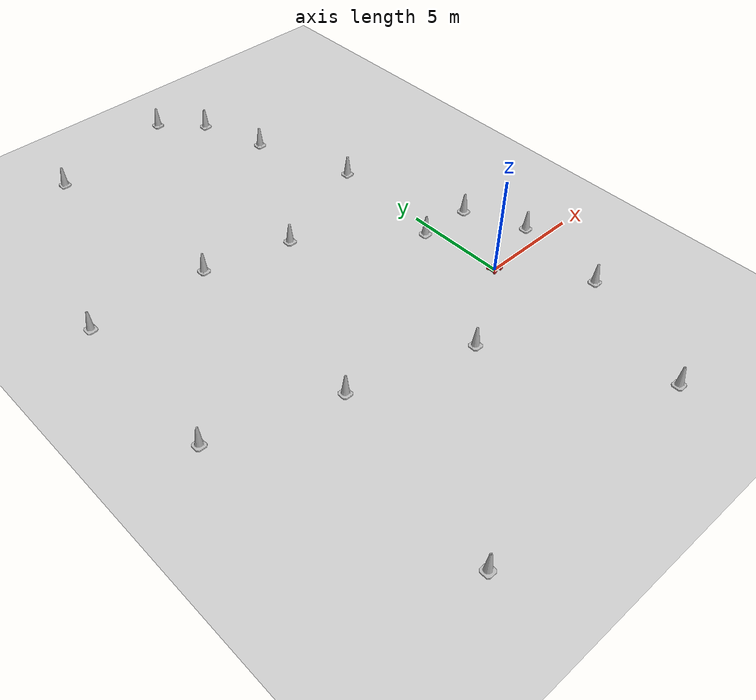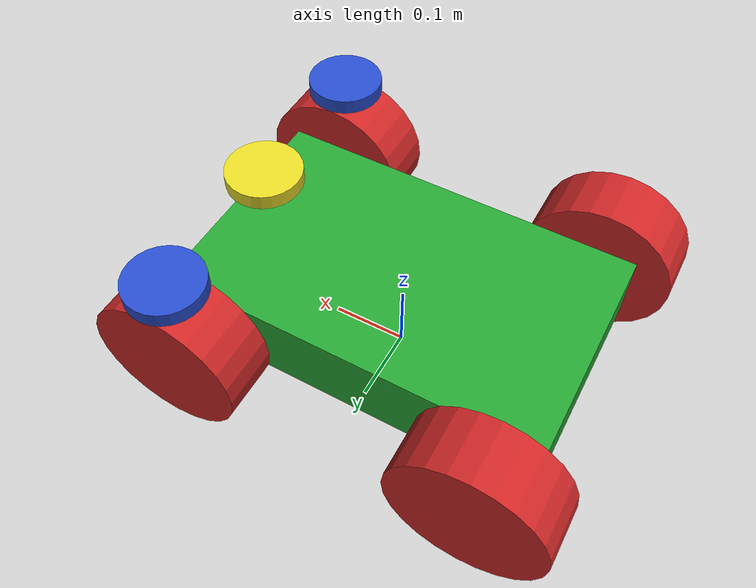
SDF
<sdf version='1.7'>
  <world name='default'>
    <!-- GUI -->
    <gui fullscreen='0'>
        <camera name='user_camera'>
            <pose>1.71108 -1.18214 0.622439 0 0.283455 2.49619</pose>
            <view_controller>orbit</view_controller>
            <projection_type>perspective</projection_type>
        </camera>
    </gui>

    <!-- Scene -->
    <scene>
        <sky>
            <time>10</time>
            <sunrise>5</sunrise>
            <sunset>21</sunset>
            <clouds>
            <speed>12</speed>
            <direction>1.57079</direction>
            </clouds>
        </sky>
        <grid>1</grid>
        <origin_visual>1</origin_visual>
    </scene>

    <!-- Lights -->
    <include>
        <uri>model://sun</uri>
    </include>

    <!-- Coordinates  -->
    <spherical_coordinates>
        <latitude_deg>51.56991349023042</latitude_deg>
        <longitude_deg>-4.033693921107272</longitude_deg>
        <elevation>10.0</elevation>
        <heading_deg>0</heading_deg>
        <surface_model>EARTH_WGS84</surface_model>
    </spherical_coordinates>

    <!-- Physics -->
    <physics type='ode'>
        <max_step_size>0.001</max_step_size>
        <ode>
            <solver>
                <type>quick</type>
                <min_step_size>0.0001</min_step_size>
            </solver>
            <constraints> -->
                <cfm>0.001</cfm>
                <erp>0.02</erp>
                <contact_max_correcting_vel>100.0</contact_max_correcting_vel>
                <contact_surface_layer>0.001</contact_surface_layer>
            </constraints>
        </ode>
    </physics>

    <!-- Models -->

    <include>
        <uri>model://ground_plane</uri>
    </include>

    <include>
        <pose>0 0 0.1 0 0 0</pose>
        <uri>model://steer_bot_ardupilot</uri>
    </include>

    <include>
        <name>cone_0</name>
        <pose>-5.06178 19.5451 0.5 0 -0 0</pose>
        <uri>model://construction_cone</uri>
    </include>

    <include>
        <name>cone_1</name>
        <pose>-16.0429 8.65322 0.5 0 -0 0</pose>
        <uri>model://construction_cone</uri>
    </include>

    <include>
        <name>cone_2</name>
        <pose>2.78476 0.552685 0.5 0 -0 0</pose>
        <uri>model://construction_cone</uri>
    </include>

    <include>
        <name>cone_3</name>
        <pose>2.16148 -3.93452 0.5 0 -0 0</pose>
        <uri>model://construction_cone</uri>
    </include>

    <include>
        <name>cone_4</name>
        <pose>1.58052 3.42171 0.5 0 -0 0</pose>
        <uri>model://construction_cone</uri>
    </include>

    <include>
        <name>cone_5</name>
        <pose>-1.00267 3.49115 0.5 0 -0 0</pose>
        <uri>model://construction_cone</uri>
    </include>

    <include>
        <name>cone_6</name>
        <pose>-3.22936 17.7299 0.5 0 -0 0</pose>
        <uri>model://construction_cone</uri>
    </include>

    <include>
        <name>cone_7</name>
        <pose>-6.07286 7.35967 0.5 0 -0 0</pose>
        <uri>model://construction_cone</uri>
    </include>

    <include>
        <name>cone_8</name>
        <pose>-10.4831 -1.24979 0.5 0 -0 0</pose>
        <uri>model://construction_cone</uri>
    </include>

    <include>
        <name>cone_9</name>
        <pose>-0.499191 9.44548 0.5 0 -0 0</pose>
        <uri>model://construction_cone</uri>
    </include>

    <include>
        <name>cone_10</name>
        <pose>-10.2726 8.40857 0.5 0 -0 0</pose>
        <uri>model://construction_cone</uri>
    </include>

    <include>
        <name>cone_11</name>
        <pose>-16.3128 0.583568 0.5 0 -0 0</pose>
        <uri>model://construction_cone</uri>
    </include>

    <include>
        <name>cone_12</name>
        <pose>-11.5416 18.2745 0.5 0 -0 0</pose>
        <uri>model://construction_cone</uri>
    </include>

    <include>
        <name>cone_13</name>
        <pose>-2.17309 14.3974 0.5 0 -0 0</pose>
        <uri>model://construction_cone</uri>
    </include>

    <include>
        <name>cone_14</name>
        <pose>-12.2668 -10.3157 0.5 0 -0 0</pose>
        <uri>model://construction_cone</uri>
    </include>

    <include>
        <name>cone_15</name>
        <pose>-0.294093 -9.92534 0.5 0 -0 0</pose>
        <uri>model://construction_cone</uri>
    </include>

    <include>
        <name>cone_16</name>
        <pose>-4.68661 -2.96284 0.5 0 -0 0</pose>
        <uri>model://construction_cone</uri>
    </include>

  </world>
</sdf>

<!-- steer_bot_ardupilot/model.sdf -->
<sdf version='1.6'>
<model name='steer_bot_ardupilot'>
    <pose>0 0 0.21 0 0 0</pose>

    <include>
        <pose>0 0 0 0 0 0</pose>
        <uri>model://steer_bot</uri>
    </include>

    <plugin name="ardupilot_plugin" filename="libArduPilotPlugin.so">
        <!-- Port settings -->
        <fdm_addr>127.0.0.1</fdm_addr>
        <fdm_port_in>9002</fdm_port_in>
        <connectionTimeoutMaxCount>5</connectionTimeoutMaxCount>
        <modelXYZToAirplaneXForwardZDown>0 0 0 3.141593 0 0</modelXYZToAirplaneXForwardZDown>
        <gazeboXYZToNED>0 0 0 3.141593 0 0</gazeboXYZToNED>

        <!-- Sensors -->
        <imuName>steer_bot_ardupilot::imu_link::imu_sensor</imuName>

        <!-- Control / channels -->

        <!--
            SERVO1_FUNCTION 94 (Script 1)
        -->
        <control channel="0">
            <jointName>steer_bot_ardupilot::steer_bot::rear_left_wheel_joint</jointName>
            <useForce>1</useForce>
            <multiplier>100.0</multiplier>
            <offset>-0.5</offset>
            <servo_min>1000</servo_min>
            <servo_max>2000</servo_max>
            <type>VELOCITY</type>
            <p_gain>1</p_gain>
            <i_gain>0</i_gain>
            <d_gain>0</d_gain>
            <i_max>1</i_max>
            <i_min>0</i_min>
            <cmd_max>50.0</cmd_max>
            <cmd_min>-50.0</cmd_min>
        </control>

        <!--
            SERVO2_FUNCTION 95 (Script 2)
        -->
        <control channel="1">
            <jointName>steer_bot_ardupilot::steer_bot::rear_right_wheel_joint</jointName>
            <useForce>1</useForce>
            <multiplier>100.0</multiplier>
            <offset>-0.5</offset>
            <servo_min>1000</servo_min>
            <servo_max>2000</servo_max>
            <type>VELOCITY</type>
            <p_gain>1</p_gain>
            <i_gain>0</i_gain>
            <d_gain>0</d_gain>
            <i_max>1</i_max>
            <i_min>0</i_min>
            <cmd_max>50.0</cmd_max>
            <cmd_min>-50.0</cmd_min>
        </control>

        <!--
            SERVO3_FUNCTION 96 (Script 3)
        -->
        <control channel="2">
            <jointName>steer_bot_ardupilot::steer_bot::front_left_steer_joint</jointName>
            <useForce>1</useForce>
            <multiplier>1.570796327</multiplier>
            <offset>-0.5</offset>
            <servo_min>1000</servo_min>
            <servo_max>2000</servo_max>
            <type>POSITION</type>
            <p_gain>2.0</p_gain>
            <i_gain>0</i_gain>
            <d_gain>0.1</d_gain>
            <i_max>1</i_max>
            <i_min>0</i_min>
            <cmd_max>0.785398163</cmd_max>
            <cmd_min>-0.785398163</cmd_min>
        </control>

        <!--
            SERVO4_FUNCTION 97 (Script 4)
        -->
        <control channel="3">
            <jointName>steer_bot_ardupilot::steer_bot::front_right_steer_joint</jointName>
            <useForce>1</useForce>
            <multiplier>1.570796327</multiplier>
            <offset>-0.5</offset>
            <servo_min>1000</servo_min>
            <servo_max>2000</servo_max>
            <type>POSITION</type>
            <p_gain>2.0</p_gain>
            <i_gain>0</i_gain>
            <d_gain>0.1</d_gain>
            <i_max>1</i_max>
            <i_min>0</i_min>
            <cmd_max>0.785398163</cmd_max>
            <cmd_min>-0.785398163</cmd_min>
        </control>

    </plugin>

    <link name='imu_link'>
        <inertial>
            <mass>0.01</mass>
            <inertia>
                <ixx>1.66667E-07</ixx>
                <ixy>0</ixy>
                <ixz>0</ixz>
                <iyy>1.66667E-07</iyy>
                <iyz>0</iyz>
                <izz>1.66667E-07</izz>
            </inertia>
        </inertial>
        <sensor name="imu_sensor" type="imu">
            <pose>0 0 0 3.141593 0 0</pose>
            <always_on>1</always_on>
            <update_rate>1000.0</update_rate>
        </sensor>
    </link>

    <joint name='imu_joint' type='fixed'>
        <child>imu_link</child>
        <parent>steer_bot_ardupilot::steer_bot::base_link</parent>
    </joint>
</model>
</sdf>

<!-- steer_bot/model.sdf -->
<sdf version='1.7'>
  <model name='steer_bot'>
    <link name='base_link'>
      <inertial>
        <pose>0 0 0 0 -0 0</pose>
        <mass>5</mass>
        <inertia>
          <ixx>0.0416667</ixx>
          <ixy>0</ixy>
          <ixz>0</ixz>
          <iyy>0.108333</iyy>
          <iyz>0</iyz>
          <izz>0.141667</izz>
        </inertia>
      </inertial>
      <collision name='base_link_collision'>
        <pose>0 0 0 0 -0 0</pose>
        <geometry>
          <box>
            <size>0.5 0.3 0.1</size>
          </box>
        </geometry>
        <surface>
          <contact>
            <ode/>
          </contact>
          <friction>
            <ode/>
          </friction>
        </surface>
      </collision>
      <visual name='base_link_visual'>
        <pose>0 0 0 0 -0 0</pose>
        <geometry>
          <box>
            <size>0.5 0.3 0.1</size>
          </box>
        </geometry>
        <material>
          <script>
            <name>Gazebo/Green</name>
            <uri>file://media/materials/scripts/gazebo.material</uri>
          </script>
        </material>
      </visual>
      <gravity>1</gravity>
      <velocity_decay/>
    </link>
    <joint name='front_left_steer_joint' type='revolute'>
      <pose relative_to='base_link'>0.2 0.2 0.12 0 -0 0</pose>
      <parent>base_link</parent>
      <child>front_left_steer_link</child>
      <axis>
        <xyz>0 0 1</xyz>
        <limit>
          <lower>-3.14159</lower>
          <upper>3.14159</upper>
          <effort>10</effort>
          <velocity>5</velocity>
        </limit>
        <dynamics>
          <spring_reference>0</spring_reference>
          <spring_stiffness>0</spring_stiffness>
        </dynamics>
      </axis>
    </joint>
    <link name='front_left_steer_link'>
      <pose relative_to='front_left_steer_joint'>0 0 0 0 -0 0</pose>
      <inertial>
        <pose>0 0 0 0 -0 0</pose>
        <mass>1</mass>
        <inertia>
          <ixx>0.000658333</ixx>
          <ixy>0</ixy>
          <ixz>0</ixz>
          <iyy>0.000658333</iyy>
          <iyz>0</iyz>
          <izz>0.00125</izz>
        </inertia>
      </inertial>
      <collision name='front_left_steer_link_collision'>
        <pose>0 0 0 0 -0 0</pose>
        <geometry>
          <cylinder>
            <length>0.02</length>
            <radius>0.05</radius>
          </cylinder>
        </geometry>
        <surface>
          <contact>
            <ode/>
          </contact>
          <friction>
            <ode/>
          </friction>
        </surface>
      </collision>
      <visual name='front_left_steer_link_visual'>
        <pose>0 0 0 0 -0 0</pose>
        <geometry>
          <cylinder>
            <length>0.02</length>
            <radius>0.05</radius>
          </cylinder>
        </geometry>
        <material>
          <script>
            <name>Gazebo/Blue</name>
            <uri>file://media/materials/scripts/gazebo.material</uri>
          </script>
        </material>
      </visual>
      <gravity>1</gravity>
      <velocity_decay/>
    </link>
    <joint name='front_left_wheel_joint' type='revolute'>
      <pose relative_to='front_left_steer_link'>0 0 -0.12 -1.5708 0 0</pose>
      <parent>front_left_steer_link</parent>
      <child>front_left_wheel_link</child>
      <axis>
        <xyz>0 0 1</xyz>
        <limit>
          <lower>-1e+16</lower>
          <upper>1e+16</upper>
        </limit>
        <dynamics>
          <spring_reference>0</spring_reference>
          <spring_stiffness>0</spring_stiffness>
        </dynamics>
      </axis>
    </joint>
    <link name='front_left_wheel_link'>
      <pose relative_to='front_left_wheel_joint'>0 0 0 0 -0 0</pose>
      <inertial>
        <pose>0 0 0 0 -0 0</pose>
        <mass>1</mass>
        <inertia>
          <ixx>0.00303333</ixx>
          <ixy>0</ixy>
          <ixz>0</ixz>
          <iyy>0.00303333</iyy>
          <iyz>0</iyz>
          <izz>0.005</izz>
        </inertia>
      </inertial>
      <collision name='front_left_wheel_link_collision'>
        <pose>0 0 0 0 -0 0</pose>
        <geometry>
          <cylinder>
            <length>0.08</length>
            <radius>0.1</radius>
          </cylinder>
        </geometry>
        <surface>
          <contact>
            <ode/>
          </contact>
          <friction>
            <ode/>
          </friction>
        </surface>
      </collision>
      <visual name='front_left_wheel_link_visual'>
        <pose>0 0 0 0 -0 0</pose>
        <geometry>
          <cylinder>
            <length>0.08</length>
            <radius>0.1</radius>
          </cylinder>
        </geometry>
        <material>
          <script>
            <name>Gazebo/Red</name>
            <uri>file://media/materials/scripts/gazebo.material</uri>
          </script>
        </material>
      </visual>
      <gravity>1</gravity>
      <velocity_decay/>
    </link>
    <joint name='front_right_steer_joint' type='revolute'>
      <pose relative_to='base_link'>0.2 -0.2 0.12 0 -0 0</pose>
      <parent>base_link</parent>
      <child>front_right_steer_link</child>
      <axis>
        <xyz>0 0 1</xyz>
        <limit>
          <lower>-3.14159</lower>
          <upper>3.14159</upper>
          <effort>10</effort>
          <velocity>5</velocity>
        </limit>
        <dynamics>
          <spring_reference>0</spring_reference>
          <spring_stiffness>0</spring_stiffness>
        </dynamics>
      </axis>
    </joint>
    <link name='front_right_steer_link'>
      <pose relative_to='front_right_steer_joint'>0 0 0 0 -0 0</pose>
      <inertial>
        <pose>0 0 0 0 -0 0</pose>
        <mass>1</mass>
        <inertia>
          <ixx>0.000658333</ixx>
          <ixy>0</ixy>
          <ixz>0</ixz>
          <iyy>0.000658333</iyy>
          <iyz>0</iyz>
          <izz>0.00125</izz>
        </inertia>
      </inertial>
      <collision name='front_right_steer_link_collision'>
        <pose>0 0 0 0 -0 0</pose>
        <geometry>
          <cylinder>
            <length>0.02</length>
            <radius>0.05</radius>
          </cylinder>
        </geometry>
        <surface>
          <contact>
            <ode/>
          </contact>
          <friction>
            <ode/>
          </friction>
        </surface>
      </collision>
      <visual name='front_right_steer_link_visual'>
        <pose>0 0 0 0 -0 0</pose>
        <geometry>
          <cylinder>
            <length>0.02</length>
            <radius>0.05</radius>
          </cylinder>
        </geometry>
        <material>
          <script>
            <name>Gazebo/Blue</name>
            <uri>file://media/materials/scripts/gazebo.material</uri>
          </script>
        </material>
      </visual>
      <gravity>1</gravity>
      <velocity_decay/>
    </link>
    <joint name='front_right_wheel_joint' type='revolute'>
      <pose relative_to='front_right_steer_link'>0 0 -0.12 -1.5708 0 0</pose>
      <parent>front_right_steer_link</parent>
      <child>front_right_wheel_link</child>
      <axis>
        <xyz>0 0 1</xyz>
        <limit>
          <lower>-1e+16</lower>
          <upper>1e+16</upper>
        </limit>
        <dynamics>
          <spring_reference>0</spring_reference>
          <spring_stiffness>0</spring_stiffness>
        </dynamics>
      </axis>
    </joint>
    <link name='front_right_wheel_link'>
      <pose relative_to='front_right_wheel_joint'>0 0 0 0 -0 0</pose>
      <inertial>
        <pose>0 0 0 0 -0 0</pose>
        <mass>1</mass>
        <inertia>
          <ixx>0.00303333</ixx>
          <ixy>0</ixy>
          <ixz>0</ixz>
          <iyy>0.00303333</iyy>
          <iyz>0</iyz>
          <izz>0.005</izz>
        </inertia>
      </inertial>
      <collision name='front_right_wheel_link_collision'>
        <pose>0 0 0 0 -0 0</pose>
        <geometry>
          <cylinder>
            <length>0.08</length>
            <radius>0.1</radius>
          </cylinder>
        </geometry>
        <surface>
          <contact>
            <ode/>
          </contact>
          <friction>
            <ode/>
          </friction>
        </surface>
      </collision>
      <visual name='front_right_wheel_link_visual'>
        <pose>0 0 0 0 -0 0</pose>
        <geometry>
          <cylinder>
            <length>0.08</length>
            <radius>0.1</radius>
          </cylinder>
        </geometry>
        <material>
          <script>
            <name>Gazebo/Red</name>
            <uri>file://media/materials/scripts/gazebo.material</uri>
          </script>
        </material>
      </visual>
      <gravity>1</gravity>
      <velocity_decay/>
    </link>
    <joint name='front_steer_joint' type='revolute'>
      <pose relative_to='base_link'>0.2 0 0.12 0 -0 0</pose>
      <parent>base_link</parent>
      <child>front_steer_link</child>
      <axis>
        <xyz>0 0 1</xyz>
        <limit>
          <lower>-3.14159</lower>
          <upper>3.14159</upper>
          <effort>10</effort>
          <velocity>5</velocity>
        </limit>
        <dynamics>
          <spring_reference>0</spring_reference>
          <spring_stiffness>0</spring_stiffness>
        </dynamics>
      </axis>
    </joint>
    <link name='front_steer_link'>
      <pose relative_to='front_steer_joint'>0 0 0 0 -0 0</pose>
      <inertial>
        <pose>0 0 0 0 -0 0</pose>
        <mass>1</mass>
        <inertia>
          <ixx>0.000658333</ixx>
          <ixy>0</ixy>
          <ixz>0</ixz>
          <iyy>0.000658333</iyy>
          <iyz>0</iyz>
          <izz>0.00125</izz>
        </inertia>
      </inertial>
      <collision name='front_steer_link_collision'>
        <pose>0 0 0 0 -0 0</pose>
        <geometry>
          <cylinder>
            <length>0.02</length>
            <radius>0.05</radius>
          </cylinder>
        </geometry>
        <surface>
          <contact>
            <ode/>
          </contact>
          <friction>
            <ode/>
          </friction>
        </surface>
      </collision>
      <visual name='front_steer_link_visual'>
        <pose>0 0 0 0 -0 0</pose>
        <geometry>
          <cylinder>
            <length>0.02</length>
            <radius>0.05</radius>
          </cylinder>
        </geometry>
        <material>
          <script>
            <name>Gazebo/Yellow</name>
            <uri>file://media/materials/scripts/gazebo.material</uri>
          </script>
        </material>
      </visual>
      <gravity>1</gravity>
      <velocity_decay/>
    </link>
    <joint name='rear_left_wheel_joint' type='revolute'>
      <pose relative_to='base_link'>-0.2 0.2 0 -1.5708 0 0</pose>
      <parent>base_link</parent>
      <child>rear_left_wheel_link</child>
      <axis>
        <xyz>0 0 1</xyz>
        <limit>
          <lower>-1e+16</lower>
          <upper>1e+16</upper>
        </limit>
        <dynamics>
          <spring_reference>0</spring_reference>
          <spring_stiffness>0</spring_stiffness>
        </dynamics>
      </axis>
    </joint>
    <link name='rear_left_wheel_link'>
      <pose relative_to='rear_left_wheel_joint'>0 0 0 0 -0 0</pose>
      <inertial>
        <pose>0 0 0 0 -0 0</pose>
        <mass>1</mass>
        <inertia>
          <ixx>0.00303333</ixx>
          <ixy>0</ixy>
          <ixz>0</ixz>
          <iyy>0.00303333</iyy>
          <iyz>0</iyz>
          <izz>0.005</izz>
        </inertia>
      </inertial>
      <collision name='rear_left_wheel_link_collision'>
        <pose>0 0 0 0 -0 0</pose>
        <geometry>
          <cylinder>
            <length>0.08</length>
            <radius>0.1</radius>
          </cylinder>
        </geometry>
        <surface>
          <contact>
            <ode/>
          </contact>
          <friction>
            <ode/>
          </friction>
        </surface>
      </collision>
      <visual name='rear_left_wheel_link_visual'>
        <pose>0 0 0 0 -0 0</pose>
        <geometry>
          <cylinder>
            <length>0.08</length>
            <radius>0.1</radius>
          </cylinder>
        </geometry>
        <material>
          <script>
            <name>Gazebo/Red</name>
            <uri>file://media/materials/scripts/gazebo.material</uri>
          </script>
        </material>
      </visual>
      <gravity>1</gravity>
      <velocity_decay/>
    </link>
    <joint name='rear_right_wheel_joint' type='revolute'>
      <pose relative_to='base_link'>-0.2 -0.2 0 -1.5708 0 0</pose>
      <parent>base_link</parent>
      <child>rear_right_wheel_link</child>
      <axis>
        <xyz>0 0 1</xyz>
        <limit>
          <lower>-1e+16</lower>
          <upper>1e+16</upper>
        </limit>
        <dynamics>
          <spring_reference>0</spring_reference>
          <spring_stiffness>0</spring_stiffness>
        </dynamics>
      </axis>
    </joint>
    <link name='rear_right_wheel_link'>
      <pose relative_to='rear_right_wheel_joint'>0 0 0 0 -0 0</pose>
      <inertial>
        <pose>0 0 0 0 -0 0</pose>
        <mass>1</mass>
        <inertia>
          <ixx>0.00303333</ixx>
          <ixy>0</ixy>
          <ixz>0</ixz>
          <iyy>0.00303333</iyy>
          <iyz>0</iyz>
          <izz>0.005</izz>
        </inertia>
      </inertial>
      <collision name='rear_right_wheel_link_collision'>
        <pose>0 0 0 0 -0 0</pose>
        <geometry>
          <cylinder>
            <length>0.08</length>
            <radius>0.1</radius>
          </cylinder>
        </geometry>
        <surface>
          <contact>
            <ode/>
          </contact>
          <friction>
            <ode/>
          </friction>
        </surface>
      </collision>
      <visual name='rear_right_wheel_link_visual'>
        <pose>0 0 0 0 -0 0</pose>
        <geometry>
          <cylinder>
            <length>0.08</length>
            <radius>0.1</radius>
          </cylinder>
        </geometry>
        <material>
          <script>
            <name>Gazebo/Red</name>
            <uri>file://media/materials/scripts/gazebo.material</uri>
          </script>
        </material>
      </visual>
      <gravity>1</gravity>
      <velocity_decay/>
    </link>
    <joint name='rear_wheel_joint' type='revolute'>
      <pose relative_to='base_link'>-0.2 0 0 -1.5708 0 0</pose>
      <parent>base_link</parent>
      <child>rear_wheel_link</child>
      <axis>
        <xyz>0 0 1</xyz>
        <limit>
          <lower>-1e+16</lower>
          <upper>1e+16</upper>
        </limit>
        <dynamics>
          <spring_reference>0</spring_reference>
          <spring_stiffness>0</spring_stiffness>
        </dynamics>
      </axis>
    </joint>
    <link name='rear_wheel_link'>
      <pose relative_to='rear_wheel_joint'>0 0 0 0 -0 0</pose>
      <inertial>
        <pose>0 0 0 0 -0 0</pose>
        <mass>0.03125</mass>
        <inertia>
          <ixx>9.04948e-06</ixx>
          <ixy>0</ixy>
          <ixz>0</ixz>
          <iyy>9.04948e-06</iyy>
          <iyz>0</iyz>
          <izz>9.76563e-06</izz>
        </inertia>
      </inertial>
      <collision name='rear_wheel_link_collision'>
        <pose>0 0 0 0 -0 0</pose>
        <geometry>
          <cylinder>
            <length>0.04</length>
            <radius>0.025</radius>
          </cylinder>
        </geometry>
        <surface>
          <contact>
            <ode/>
          </contact>
          <friction>
            <ode/>
          </friction>
        </surface>
      </collision>
      <visual name='rear_wheel_link_visual'>
        <pose>0 0 0 0 -0 0</pose>
        <geometry>
          <cylinder>
            <length>0.04</length>
            <radius>0.025</radius>
          </cylinder>
        </geometry>
        <material>
          <script>
            <name>Gazebo/Yellow</name>
            <uri>file://media/materials/scripts/gazebo.material</uri>
          </script>
        </material>
      </visual>
      <gravity>1</gravity>
      <velocity_decay/>
    </link>
    <static>0</static>
  </model>
</sdf>

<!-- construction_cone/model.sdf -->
<sdf version="1.5">
  <model name="Construction Cone">
    <link name="link">
      <collision name="collision">
        <geometry>
          <mesh>
            <scale>10 10 10</scale>
            <uri>file://isr-testbed/construction_cone/meshes/construction_cone.dae</uri>
          </mesh>
        </geometry>
      </collision>
      <visual name="visual">
        <geometry>
          <mesh>
            <scale>10 10 10</scale>
            <uri>file://isr-testbed/construction_cone/meshes/construction_cone.dae</uri>
          </mesh>
        </geometry>
      </visual>
    </link>
  </model>
</sdf>
